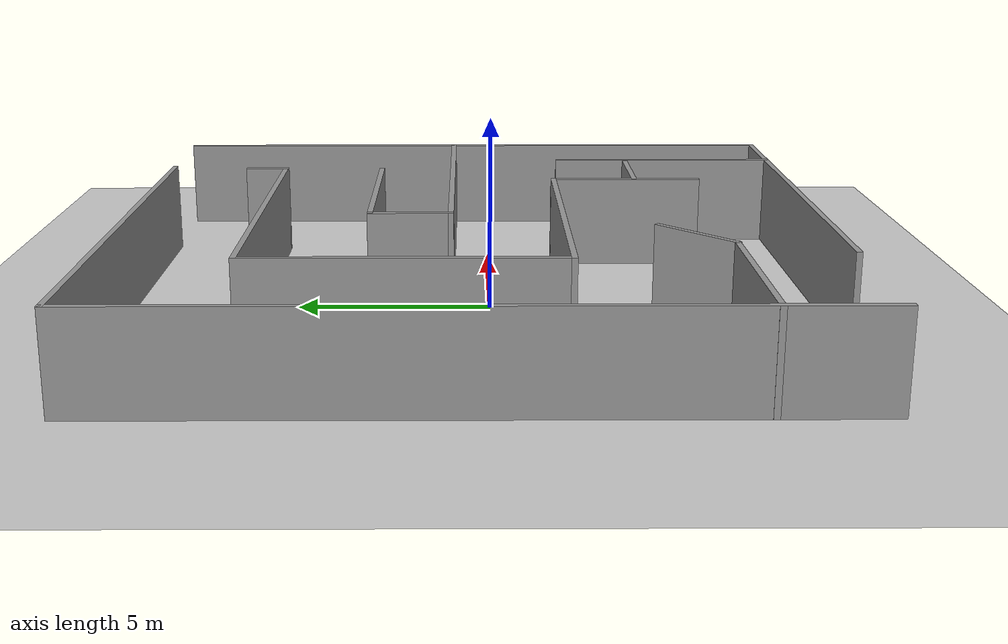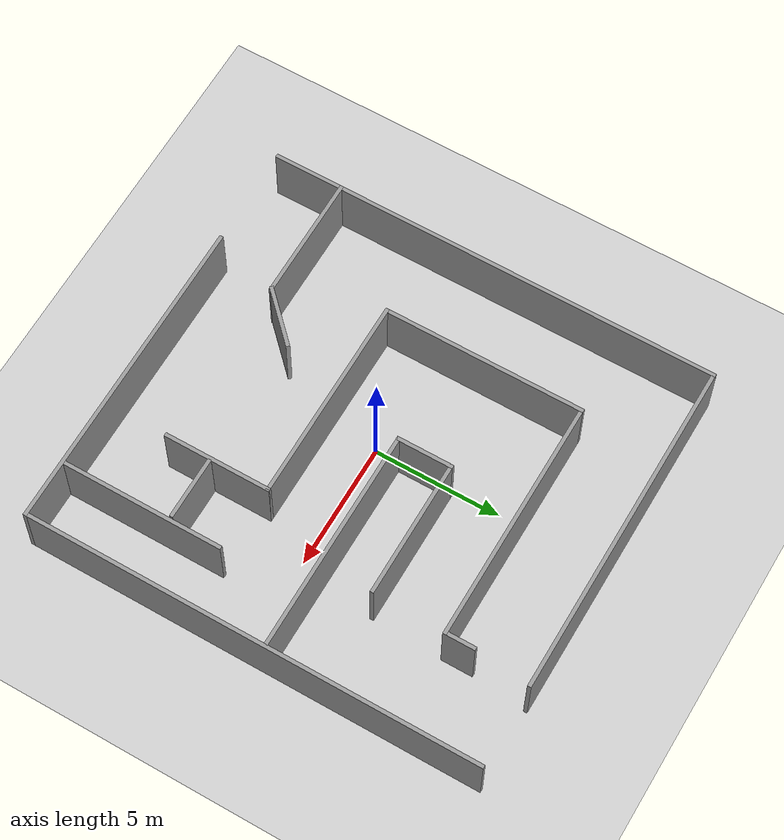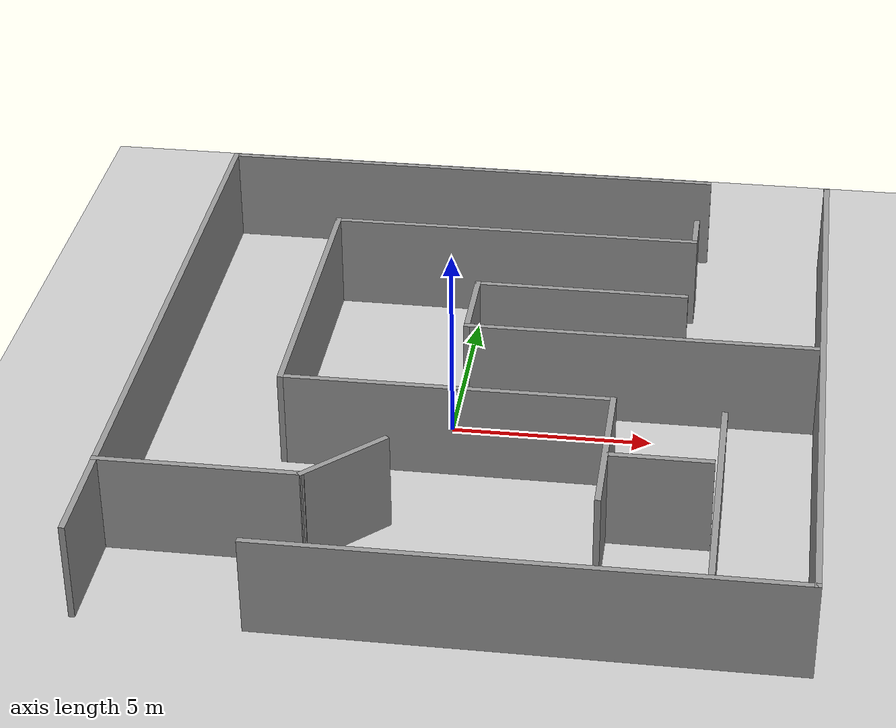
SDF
<sdf version="1.7">
 <world name="default">
  <light name="sun" type="directional">
   <pose>0 0 10 0 -0 0</pose>
   <diffuse>0.8 0.8 0.8 1</diffuse>
   <specular>0.2 0.2 0.2 1</specular>
   <attenuation>
    <range>1000</range>
    <constant>0.9</constant>
    <linear>0.01</linear>
    <quadratic>0.001</quadratic>
   </attenuation>
   <direction>-0.5 0.1 -0.9</direction>
   <spot><inner_angle>0</inner_angle><outer_angle>0</outer_angle><falloff>0</falloff></spot>
  </light>
  <model name="ground_plane">
   <static>1</static>
   <link name="link">
    <collision name="collision">
     <geometry><plane><normal>0 0 1</normal><size>100 100</size></plane></geometry>
     <surface>
      <contact><collide_bitmask>65535</collide_bitmask></contact>
      <friction><ode><mu>100</mu><mu2>50</mu2></ode></friction>
     </surface>
    </collision>
    <visual name="visual">
     <cast_shadows>0</cast_shadows>
     <geometry><plane><normal>0 0 1</normal><size>100 100</size></plane></geometry>
     <material>
      <script><uri>file://media/materials/scripts/gazebo.material</uri><name>Gazebo/Grey</name></script>
     </material>
    </visual>
   </link>
  </model>
  <gravity>0 0 -9.8</gravity>
  <magnetic_field>6e-06 2.3e-05 -4.2e-05</magnetic_field>
  <atmosphere type="adiabatic"/>
  <physics type="ode">
   <max_step_size>0.001</max_step_size>
   <real_time_factor>1</real_time_factor>
   <real_time_update_rate>1000</real_time_update_rate>
  </physics>
  <scene><ambient>0.4 0.4 0.4 1</ambient><background>0.7 0.7 0.7 1</background><shadows>1</shadows></scene>
  <spherical_coordinates>
   <surface_model>EARTH_WGS84</surface_model>
   <latitude_deg>0</latitude_deg>
   <longitude_deg>0</longitude_deg>
   <elevation>0</elevation>
   <heading_deg>0</heading_deg>
  </spherical_coordinates>
  <model name="Untitled">
   <pose>0.797717 0.389401 0 0 -0 0</pose>
   <link name="Wall_101">
    <collision name="Wall_101_Collision">
     <geometry><box><size>13.5 0.15 2.5</size></box></geometry>
     <pose>0 0 1.25 0 -0 0</pose>
    </collision>
    <visual name="Wall_101_Visual">
     <pose>0 0 1.25 0 -0 0</pose>
     <geometry><box><size>13.5 0.15 2.5</size></box></geometry>
     <material>
      <script><uri>file://media/materials/scripts/gazebo.material</uri><name>Gazebo/Grey</name></script>
      <ambient>1 1 1 1</ambient>
     </material>
     <meta><layer>0</layer></meta>
    </visual>
    <pose>-1.62142 8.925 0 0 -0 0</pose>
   </link>
   <link name="Wall_107">
    <collision name="Wall_107_Collision">
     <geometry><box><size>8.25 0.15 2.5</size></box></geometry>
     <pose>0 0 1.25 0 -0 0</pose>
    </collision>
    <visual name="Wall_107_Visual">
     <pose>0 0 1.25 0 -0 0</pose>
     <geometry><box><size>8.25 0.15 2.5</size></box></geometry>
     <material>
      <script><uri>file://media/materials/scripts/gazebo.material</uri><name>Gazebo/Grey</name></script>
      <ambient>1 1 1 1</ambient>
     </material>
     <meta><layer>0</layer></meta>
    </visual>
    <pose>-0.698794 -2.26647 0 0 -0 0</pose>
   </link>
   <link name="Wall_108">
    <collision name="Wall_108_Collision">
     <geometry><box><size>4.25 0.15 2.5</size></box></geometry>
     <pose>0 0 1.25 0 -0 0</pose>
    </collision>
    <visual name="Wall_108_Visual">
     <pose>0 0 1.25 0 -0 0</pose>
     <geometry><box><size>4.25 0.15 2.5</size></box></geometry>
     <material>
      <script><uri>file://media/materials/scripts/gazebo.material</uri><name>Gazebo/Grey</name></script>
      <ambient>1 1 1 1</ambient>
     </material>
     <meta><layer>0</layer></meta>
    </visual>
    <pose>3.35121 -4.31647 0 0 -0 -1.5708</pose>
   </link>
   <link name="Wall_121">
    <collision name="Wall_121_Collision">
     <geometry><box><size>6.5 0.15 2.5</size></box></geometry>
     <pose>0 0 1.25 0 -0 0</pose>
    </collision>
    <visual name="Wall_121_Visual">
     <pose>0 0 1.25 0 -0 0</pose>
     <geometry><box><size>6.5 0.15 2.5</size></box></geometry>
     <material>
      <script><uri>file://media/materials/scripts/gazebo.material</uri><name>Gazebo/Grey</name></script>
      <ambient>1 1 1 1</ambient>
     </material>
     <meta><layer>0</layer></meta>
    </visual>
    <pose>6.02377 -5.74433 0 0 -0 -1.5708</pose>
   </link>
   <link name="Wall_136">
    <collision name="Wall_136_Collision">
     <geometry><box><size>5 0.15 2.5</size></box></geometry>
     <pose>0 0 1.25 0 -0 0</pose>
    </collision>
    <visual name="Wall_136_Visual">
     <pose>0 0 1.25 0 -0 0</pose>
     <geometry><box><size>5 0.15 2.5</size></box></geometry>
     <material>
      <script><uri>file://media/materials/scripts/gazebo.material</uri><name>Gazebo/Grey</name></script>
      <ambient>1 1 1 1</ambient>
     </material>
     <meta><layer>0</layer></meta>
    </visual>
    <pose>-5.87857 -6.25792 0 0 -0 0</pose>
   </link>
   <link name="Wall_137">
    <collision name="Wall_137_Collision">
     <geometry><box><size>2.5 0.15 2.5</size></box></geometry>
     <pose>0 0 1.25 0 -0 0</pose>
    </collision>
    <visual name="Wall_137_Visual">
     <pose>0 0 1.25 0 -0 0</pose>
     <geometry><box><size>2.5 0.15 2.5</size></box></geometry>
     <material>
      <script><uri>file://media/materials/scripts/gazebo.material</uri><name>Gazebo/Grey</name></script>
      <ambient>1 1 1 1</ambient>
     </material>
     <meta><layer>0</layer></meta>
    </visual>
    <pose>-2.62272 -5.42707 0 0 -0 0.785398</pose>
   </link>
   <link name="Wall_143">
    <collision name="Wall_143_Collision">
     <geometry><box><size>9 0.15 2.5</size></box></geometry>
     <pose>0 0 1.25 0 -0 0</pose>
    </collision>
    <visual name="Wall_143_Visual">
     <pose>0 0 1.25 0 -0 0</pose>
     <geometry><box><size>9 0.15 2.5</size></box></geometry>
     <material>
      <script><uri>file://media/materials/scripts/gazebo.material</uri><name>Gazebo/Grey</name></script>
      <ambient>1 1 1 1</ambient>
     </material>
     <meta><layer>0</layer></meta>
    </visual>
    <pose>3.84686 0.629055 0 0 -0 3.14159</pose>
   </link>
   <link name="Wall_145">
    <collision name="Wall_145_Collision">
     <geometry><box><size>8 0.15 2.5</size></box></geometry>
     <pose>0 0 1.25 0 -0 0</pose>
    </collision>
    <visual name="Wall_145_Visual">
     <pose>0 0 1.25 0 -0 0</pose>
     <geometry><box><size>8 0.15 2.5</size></box></geometry>
     <material>
      <script><uri>file://media/materials/scripts/gazebo.material</uri><name>Gazebo/Grey</name></script>
      <ambient>1 1 1 1</ambient>
     </material>
     <meta><layer>0</layer></meta>
    </visual>
    <pose>-4.74879 1.65853 0 0 -0 1.5708</pose>
   </link>
   <link name="Wall_146">
    <collision name="Wall_146_Collision">
     <geometry><box><size>9.75 0.15 2.5</size></box></geometry>
     <pose>0 0 1.25 0 -0 0</pose>
    </collision>
    <visual name="Wall_146_Visual">
     <pose>0 0 1.25 0 -0 0</pose>
     <geometry><box><size>9.75 0.15 2.5</size></box></geometry>
     <material>
      <script><uri>file://media/materials/scripts/gazebo.material</uri><name>Gazebo/Grey</name></script>
      <ambient>1 1 1 1</ambient>
     </material>
     <meta><layer>0</layer></meta>
    </visual>
    <pose>0.051206 5.58353 0 0 -0 0</pose>
   </link>
   <link name="Wall_152">
    <collision name="Wall_152_Collision">
     <geometry><box><size>1.25 0.15 2.5</size></box></geometry>
     <pose>0 0 1.25 0 -0 0</pose>
    </collision>
    <visual name="Wall_152_Visual">
     <pose>0 0 1.25 0 -0 0</pose>
     <geometry><box><size>1.25 0.15 2.5</size></box></geometry>
     <material>
      <script><uri>file://media/materials/scripts/gazebo.material</uri><name>Gazebo/Grey</name></script>
      <ambient>1 1 1 1</ambient>
     </material>
     <meta><layer>0</layer></meta>
    </visual>
    <pose>4.85121 6.13353 0 0 -0 1.5708</pose>
   </link>
   <link name="Wall_154">
    <collision name="Wall_154_Collision">
     <geometry><box><size>2.5 0.15 2.5</size></box></geometry>
     <pose>0 0 1.25 0 -0 0</pose>
    </collision>
    <visual name="Wall_154_Visual">
     <pose>0 0 1.25 0 -0 0</pose>
     <geometry><box><size>2.5 0.15 2.5</size></box></geometry>
     <material>
      <script><uri>file://media/materials/scripts/gazebo.material</uri><name>Gazebo/Grey</name></script>
      <ambient>1 1 1 1</ambient>
     </material>
     <meta><layer>0</layer></meta>
    </visual>
    <pose>4.64688 -4.58612 0 0 -0 0</pose>
   </link>
   <link name="Wall_156">
    <collision name="Wall_156_Collision">
     <geometry><box><size>2.25 0.15 2.5</size></box></geometry>
     <pose>0 0 1.25 0 -0 0</pose>
    </collision>
    <visual name="Wall_156_Visual">
     <pose>0 0 1.25 0 -0 0</pose>
     <geometry><box><size>2.25 0.15 2.5</size></box></geometry>
     <material>
      <script><uri>file://media/materials/scripts/gazebo.material</uri><name>Gazebo/Grey</name></script>
      <ambient>1 1 1 1</ambient>
     </material>
     <meta><layer>0</layer></meta>
    </visual>
    <pose>-0.578135 1.67905 0 0 -0 1.5708</pose>
   </link>
   <link name="Wall_157">
    <collision name="Wall_157_Collision">
     <geometry><box><size>5.5 0.15 2.5</size></box></geometry>
     <pose>0 0 1.25 0 -0 0</pose>
    </collision>
    <visual name="Wall_157_Visual">
     <pose>0 0 1.25 0 -0 0</pose>
     <geometry><box><size>5.5 0.15 2.5</size></box></geometry>
     <material>
      <script><uri>file://media/materials/scripts/gazebo.material</uri><name>Gazebo/Grey</name></script>
      <ambient>1 1 1 1</ambient>
     </material>
     <meta><layer>0</layer></meta>
    </visual>
    <pose>2.09687 2.72905 0 0 -0 0</pose>
   </link>
   <link name="Wall_96">
    <collision name="Wall_96_Collision">
     <geometry><box><size>18 0.15 2.5</size></box></geometry>
     <pose>0 0 1.25 0 -0 0</pose>
    </collision>
    <visual name="Wall_96_Visual">
     <pose>0 0 1.25 0 -0 0</pose>
     <geometry><box><size>18 0.15 2.5</size></box></geometry>
     <material>
      <script><uri>file://media/materials/scripts/gazebo.material</uri><name>Gazebo/Grey</name></script>
      <ambient>1 1 1 1</ambient>
     </material>
     <meta><layer>0</layer></meta>
    </visual>
    <pose>-8.29642 -0 0 0 -0 1.5708</pose>
   </link>
   <link name="Wall_98">
    <collision name="Wall_98_Collision">
     <geometry><box><size>18 0.15 2.5</size></box></geometry>
     <pose>0 0 1.25 0 -0 0</pose>
    </collision>
    <visual name="Wall_98_Visual">
     <pose>0 0 1.25 0 -0 0</pose>
     <geometry><box><size>18 0.15 2.5</size></box></geometry>
     <material>
      <script><uri>file://media/materials/scripts/gazebo.material</uri><name>Gazebo/Grey</name></script>
      <ambient>1 1 1 1</ambient>
     </material>
     <meta><layer>0</layer></meta>
    </visual>
    <pose>8.30358 -0 0 0 -0 -1.5708</pose>
   </link>
   <link name="Wall_99">
    <collision name="Wall_99_Collision">
     <geometry><box><size>12.75 0.15 2.5</size></box></geometry>
     <pose>0 0 1.25 0 -0 0</pose>
    </collision>
    <visual name="Wall_99_Visual">
     <pose>0 0 1.25 0 -0 0</pose>
     <geometry><box><size>12.75 0.15 2.5</size></box></geometry>
     <material>
      <script><uri>file://media/materials/scripts/gazebo.material</uri><name>Gazebo/Grey</name></script>
      <ambient>1 1 1 1</ambient>
     </material>
     <meta><layer>0</layer></meta>
    </visual>
    <pose>2.00358 -8.925 0 0 -0 3.14159</pose>
   </link>
   <static>1</static>
  </model>
 </world>
</sdf>
